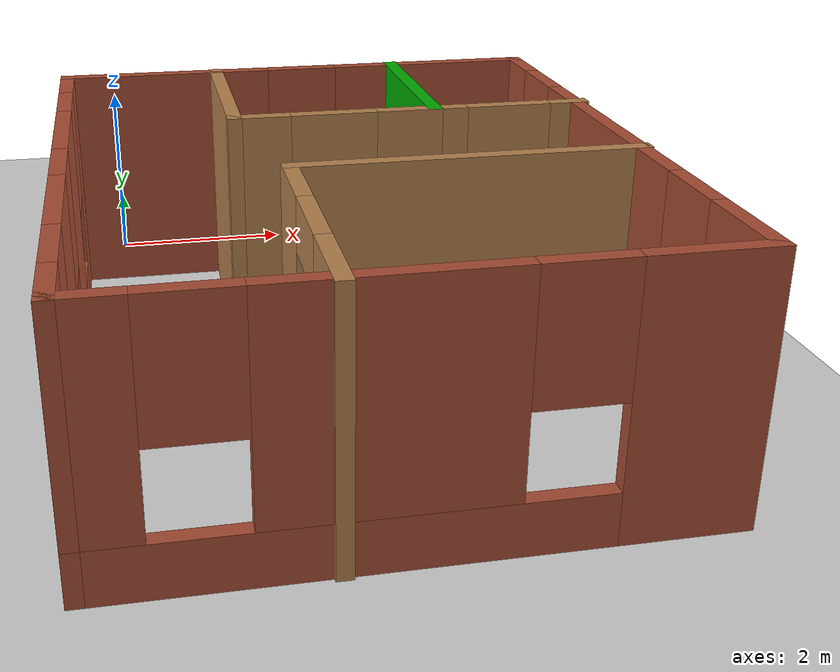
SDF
<sdf version="1.6">
 <world name="default">
  <light name="sun" type="directional">
   <pose>0 0 10 0 -0 0</pose>
   <diffuse>0.8 0.8 0.8 1</diffuse>
   <specular>0.2 0.2 0.2 1</specular>
   <attenuation>
    <range>1000</range>
    <constant>0.9</constant>
    <linear>0.01</linear>
    <quadratic>0.001</quadratic>
   </attenuation>
   <direction>-0.5 0.1 -0.9</direction>
  </light>
  <model name="ground_plane">
   <static>1</static>
   <link name="link">
    <collision name="collision">
     <geometry><plane><normal>0 0 1</normal><size>100 100</size></plane></geometry>
     <surface><friction><ode><mu>100</mu><mu2>50</mu2></ode></friction></surface>
    </collision>
    <visual name="visual">
     <cast_shadows>0</cast_shadows>
     <geometry><plane><normal>0 0 1</normal><size>100 100</size></plane></geometry>
     <material>
      <script><uri>file://media/materials/scripts/gazebo.material</uri><name>Gazebo/Grey</name></script>
     </material>
    </visual>
   </link>
  </model>
  <gravity>0 0 -9.8</gravity>
  <magnetic_field>6e-06 2.3e-05 -4.2e-05</magnetic_field>
  <atmosphere type="adiabatic"/>
  <physics name="default_physics" default="0" type="ode">
   <max_step_size>0.001</max_step_size>
   <real_time_factor>1</real_time_factor>
   <real_time_update_rate>1000</real_time_update_rate>
  </physics>
  <scene><ambient>0.4 0.4 0.4 1</ambient><background>0.7 0.7 0.7 1</background><shadows>1</shadows></scene>
  <spherical_coordinates>
   <surface_model>EARTH_WGS84</surface_model>
   <latitude_deg>0</latitude_deg>
   <longitude_deg>0</longitude_deg>
   <elevation>0</elevation>
   <heading_deg>0</heading_deg>
  </spherical_coordinates>
  <model name="NewRobotWorld">
   <pose>2.19526 -4.22835 0 0 -0 0</pose>
   <link name="Wall_10">
    <collision name="Wall_10_Collision">
     <geometry><box><size>3.5 0.15 2.5</size></box></geometry>
     <pose>0 0 1.25 0 -0 0</pose>
    </collision>
    <visual name="Wall_10_Visual">
     <pose>0 0 1.25 0 -0 0</pose>
     <geometry><box><size>3.5 0.15 2.5</size></box></geometry>
     <material>
      <script><uri>file://media/materials/scripts/gazebo.material</uri><name>Gazebo/Wood</name></script>
      <ambient>1 1 1 1</ambient>
     </material>
     <meta><layer>0</layer></meta>
    </visual>
    <pose>1.0011 -0.604896 0 0 -0 3.14159</pose>
   </link>
   <link name="Wall_11">
    <pose>-0.673905 -1.9049 0 0 0 -1.5708</pose>
    <visual name="Wall_11_Visual_0">
     <pose>-0.912326 0 1.25 0 -0 0</pose>
     <geometry><box><size>0.925348 0.15 2.5</size></box></geometry>
     <material>
      <script><uri>file://media/materials/scripts/gazebo.material</uri><name>Gazebo/Wood</name></script>
      <ambient>1 1 1 1</ambient>
     </material>
     <meta><layer>0</layer></meta>
    </visual>
    <collision name="Wall_11_Collision_0">
     <geometry><box><size>0.925348 0.15 2.5</size></box></geometry>
     <pose>-0.912326 0 1.25 0 -0 0</pose>
    </collision>
    <visual name="Wall_11_Visual_1">
     <pose>0.912674 0 1.25 0 -0 0</pose>
     <geometry><box><size>0.924652 0.15 2.5</size></box></geometry>
     <material>
      <script><uri>file://media/materials/scripts/gazebo.material</uri><name>Gazebo/Wood</name></script>
      <ambient>1 1 1 1</ambient>
     </material>
     <meta><layer>0</layer></meta>
    </visual>
    <collision name="Wall_11_Collision_1">
     <geometry><box><size>0.924652 0.15 2.5</size></box></geometry>
     <pose>0.912674 0 1.25 0 -0 0</pose>
    </collision>
    <visual name="Wall_11_Visual_2">
     <pose>0.000348 0 2.25 0 -0 0</pose>
     <geometry><box><size>0.9 0.15 0.5</size></box></geometry>
     <material>
      <script><uri>file://media/materials/scripts/gazebo.material</uri><name>Gazebo/Wood</name></script>
      <ambient>1 1 1 1</ambient>
     </material>
     <meta><layer>0</layer></meta>
    </visual>
    <collision name="Wall_11_Collision_2">
     <geometry><box><size>0.9 0.15 0.5</size></box></geometry>
     <pose>0.000348 0 2.25 0 -0 0</pose>
    </collision>
   </link>
   <link name="Wall_18">
    <collision name="Wall_18_Collision">
     <geometry><box><size>2.25 0.15 2.5</size></box></geometry>
     <pose>0 0 1.25 0 -0 0</pose>
    </collision>
    <visual name="Wall_18_Visual">
     <pose>0 0 1.25 0 -0 0</pose>
     <geometry><box><size>2.25 0.15 2.5</size></box></geometry>
     <material>
      <script><uri>file://media/materials/scripts/gazebo.material</uri><name>Gazebo/Grey</name></script>
      <ambient>0 0.666667 0 1</ambient>
     </material>
     <meta><layer>0</layer></meta>
    </visual>
    <pose>1.10199 2.1549 0 0 0 -1.5708</pose>
   </link>
   <link name="Wall_19">
    <pose>1.90199 1.1049 0 0 -0 0</pose>
    <visual name="Wall_19_Visual_0">
     <pose>-0.66327 0 1.25 0 -0 0</pose>
     <geometry><box><size>0.423459 0.15 2.5</size></box></geometry>
     <material>
      <script><uri>file://media/materials/scripts/gazebo.material</uri><name>Gazebo/Wood</name></script>
      <ambient>1 1 1 1</ambient>
     </material>
     <meta><layer>0</layer></meta>
    </visual>
    <collision name="Wall_19_Collision_0">
     <geometry><box><size>0.423459 0.15 2.5</size></box></geometry>
     <pose>-0.66327 0 1.25 0 -0 0</pose>
    </collision>
    <visual name="Wall_19_Visual_1">
     <pose>0.66173 0 1.25 0 -0 0</pose>
     <geometry><box><size>0.426541 0.15 2.5</size></box></geometry>
     <material>
      <script><uri>file://media/materials/scripts/gazebo.material</uri><name>Gazebo/Wood</name></script>
      <ambient>1 1 1 1</ambient>
     </material>
     <meta><layer>0</layer></meta>
    </visual>
    <collision name="Wall_19_Collision_1">
     <geometry><box><size>0.426541 0.15 2.5</size></box></geometry>
     <pose>0.66173 0 1.25 0 -0 0</pose>
    </collision>
    <visual name="Wall_19_Visual_2">
     <pose>-0.001541 0 2.25 0 -0 0</pose>
     <geometry><box><size>0.9 0.15 0.5</size></box></geometry>
     <material>
      <script><uri>file://media/materials/scripts/gazebo.material</uri><name>Gazebo/Wood</name></script>
      <ambient>1 1 1 1</ambient>
     </material>
     <meta><layer>0</layer></meta>
    </visual>
    <collision name="Wall_19_Collision_2">
     <geometry><box><size>0.9 0.15 0.5</size></box></geometry>
     <pose>-0.001541 0 2.25 0 -0 0</pose>
    </collision>
   </link>
   <link name="Wall_22">
    <pose>-2.70199 0.007083 0 0 0 -1.5708</pose>
    <visual name="Wall_22_Visual_0">
     <pose>-2.85358 0 1.25 0 -0 0</pose>
     <geometry><box><size>0.792843 0.15 2.5</size></box></geometry>
     <material>
      <script><uri>file://media/materials/scripts/gazebo.material</uri><name>Gazebo/Bricks</name></script>
      <ambient>1 1 1 1</ambient>
     </material>
     <meta><layer>0</layer></meta>
    </visual>
    <collision name="Wall_22_Collision_0">
     <geometry><box><size>0.792843 0.15 2.5</size></box></geometry>
     <pose>-2.85358 0 1.25 0 -0 0</pose>
    </collision>
    <visual name="Wall_22_Visual_1">
     <pose>0.396422 0 0.25 0 -0 0</pose>
     <geometry><box><size>5.70716 0.15 0.5</size></box></geometry>
     <material>
      <script><uri>file://media/materials/scripts/gazebo.material</uri><name>Gazebo/Bricks</name></script>
      <ambient>1 1 1 1</ambient>
     </material>
     <meta><layer>0</layer></meta>
    </visual>
    <collision name="Wall_22_Collision_1">
     <geometry><box><size>5.70716 0.15 0.5</size></box></geometry>
     <pose>0.396422 0 0.25 0 -0 0</pose>
    </collision>
    <visual name="Wall_22_Visual_2">
     <pose>-0.973533 0 1.5 0 -0 0</pose>
     <geometry><box><size>1.36725 0.15 2</size></box></geometry>
     <material>
      <script><uri>file://media/materials/scripts/gazebo.material</uri><name>Gazebo/Bricks</name></script>
      <ambient>1 1 1 1</ambient>
     </material>
     <meta><layer>0</layer></meta>
    </visual>
    <collision name="Wall_22_Collision_2">
     <geometry><box><size>1.36725 0.15 2</size></box></geometry>
     <pose>-0.973533 0 1.5 0 -0 0</pose>
    </collision>
    <visual name="Wall_22_Visual_3">
     <pose>1.13668 0 1.5 0 -0 0</pose>
     <geometry><box><size>1.25318 0.15 2</size></box></geometry>
     <material>
      <script><uri>file://media/materials/scripts/gazebo.material</uri><name>Gazebo/Bricks</name></script>
      <ambient>1 1 1 1</ambient>
     </material>
     <meta><layer>0</layer></meta>
    </visual>
    <collision name="Wall_22_Collision_3">
     <geometry><box><size>1.25318 0.15 2</size></box></geometry>
     <pose>1.13668 0 1.5 0 -0 0</pose>
    </collision>
    <visual name="Wall_22_Visual_4">
     <pose>2.90664 0 1.5 0 -0 0</pose>
     <geometry><box><size>0.686729 0.15 2</size></box></geometry>
     <material>
      <script><uri>file://media/materials/scripts/gazebo.material</uri><name>Gazebo/Bricks</name></script>
      <ambient>1 1 1 1</ambient>
     </material>
     <meta><layer>0</layer></meta>
    </visual>
    <collision name="Wall_22_Collision_4">
     <geometry><box><size>0.686729 0.15 2</size></box></geometry>
     <pose>2.90664 0 1.5 0 -0 0</pose>
    </collision>
    <visual name="Wall_22_Visual_5">
     <pose>-2.05716 0 1.9 0 -0 0</pose>
     <geometry><box><size>0.8 0.15 1.2</size></box></geometry>
     <material>
      <script><uri>file://media/materials/scripts/gazebo.material</uri><name>Gazebo/Bricks</name></script>
      <ambient>1 1 1 1</ambient>
     </material>
     <meta><layer>0</layer></meta>
    </visual>
    <collision name="Wall_22_Collision_5">
     <geometry><box><size>0.8 0.15 1.2</size></box></geometry>
     <pose>-2.05716 0 1.9 0 -0 0</pose>
    </collision>
    <visual name="Wall_22_Visual_6">
     <pose>0.11009 0 1.9 0 -0 0</pose>
     <geometry><box><size>0.8 0.15 1.2</size></box></geometry>
     <material>
      <script><uri>file://media/materials/scripts/gazebo.material</uri><name>Gazebo/Bricks</name></script>
      <ambient>1 1 1 1</ambient>
     </material>
     <meta><layer>0</layer></meta>
    </visual>
    <collision name="Wall_22_Collision_6">
     <geometry><box><size>0.8 0.15 1.2</size></box></geometry>
     <pose>0.11009 0 1.9 0 -0 0</pose>
    </collision>
    <visual name="Wall_22_Visual_7">
     <pose>2.16327 0 1.9 0 -0 0</pose>
     <geometry><box><size>0.8 0.15 1.2</size></box></geometry>
     <material>
      <script><uri>file://media/materials/scripts/gazebo.material</uri><name>Gazebo/Bricks</name></script>
      <ambient>1 1 1 1</ambient>
     </material>
     <meta><layer>0</layer></meta>
    </visual>
    <collision name="Wall_22_Collision_7">
     <geometry><box><size>0.8 0.15 1.2</size></box></geometry>
     <pose>2.16327 0 1.9 0 -0 0</pose>
    </collision>
   </link>
   <link name="Wall_24">
    <pose>0.051989 1.1049 0 0 -0 3.14159</pose>
    <visual name="Wall_24_Visual_0">
     <pose>-0.776392 0 1.25 0 -0 0</pose>
     <geometry><box><size>0.697217 0.15 2.5</size></box></geometry>
     <material>
      <script><uri>file://media/materials/scripts/gazebo.material</uri><name>Gazebo/Wood</name></script>
      <ambient>1 1 1 1</ambient>
     </material>
     <meta><layer>0</layer></meta>
    </visual>
    <collision name="Wall_24_Collision_0">
     <geometry><box><size>0.697217 0.15 2.5</size></box></geometry>
     <pose>-0.776392 0 1.25 0 -0 0</pose>
    </collision>
    <visual name="Wall_24_Visual_1">
     <pose>0.798608 0 1.25 0 -0 0</pose>
     <geometry><box><size>0.652783 0.15 2.5</size></box></geometry>
     <material>
      <script><uri>file://media/materials/scripts/gazebo.material</uri><name>Gazebo/Wood</name></script>
      <ambient>1 1 1 1</ambient>
     </material>
     <meta><layer>0</layer></meta>
    </visual>
    <collision name="Wall_24_Collision_1">
     <geometry><box><size>0.652783 0.15 2.5</size></box></geometry>
     <pose>0.798608 0 1.25 0 -0 0</pose>
    </collision>
    <visual name="Wall_24_Visual_2">
     <pose>0.022217 0 2.25 0 -0 0</pose>
     <geometry><box><size>0.9 0.15 0.5</size></box></geometry>
     <material>
      <script><uri>file://media/materials/scripts/gazebo.material</uri><name>Gazebo/Wood</name></script>
      <ambient>1 1 1 1</ambient>
     </material>
     <meta><layer>0</layer></meta>
    </visual>
    <collision name="Wall_24_Collision_2">
     <geometry><box><size>0.9 0.15 0.5</size></box></geometry>
     <pose>0.022217 0 2.25 0 -0 0</pose>
    </collision>
   </link>
   <link name="Wall_26">
    <collision name="Wall_26_Collision">
     <geometry><box><size>2.25 0.15 2.5</size></box></geometry>
     <pose>0 0 1.25 0 -0 0</pose>
    </collision>
    <visual name="Wall_26_Visual">
     <pose>0 0 1.25 0 -0 0</pose>
     <geometry><box><size>2.25 0.15 2.5</size></box></geometry>
     <material>
      <script><uri>file://media/materials/scripts/gazebo.material</uri><name>Gazebo/Wood</name></script>
      <ambient>1 1 1 1</ambient>
     </material>
     <meta><layer>0</layer></meta>
    </visual>
    <pose>-0.998011 2.1549 0 0 -0 1.5708</pose>
   </link>
   <link name="Wall_5">
    <pose>-0.026989 3.18208 0 0 -0 0</pose>
    <visual name="Wall_5_Visual_0">
     <pose>-1.55803 0 1.25 0 -0 0</pose>
     <geometry><box><size>2.38395 0.15 2.5</size></box></geometry>
     <material>
      <script><uri>file://media/materials/scripts/gazebo.material</uri><name>Gazebo/Bricks</name></script>
      <ambient>1 1 1 1</ambient>
     </material>
     <meta><layer>0</layer></meta>
    </visual>
    <collision name="Wall_5_Collision_0">
     <geometry><box><size>2.38395 0.15 2.5</size></box></geometry>
     <pose>-1.55803 0 1.25 0 -0 0</pose>
    </collision>
    <visual name="Wall_5_Visual_1">
     <pose>1.19197 0 0.25 0 -0 0</pose>
     <geometry><box><size>3.11605 0.15 0.5</size></box></geometry>
     <material>
      <script><uri>file://media/materials/scripts/gazebo.material</uri><name>Gazebo/Bricks</name></script>
      <ambient>1 1 1 1</ambient>
     </material>
     <meta><layer>0</layer></meta>
    </visual>
    <collision name="Wall_5_Collision_1">
     <geometry><box><size>3.11605 0.15 0.5</size></box></geometry>
     <pose>1.19197 0 0.25 0 -0 0</pose>
    </collision>
    <visual name="Wall_5_Visual_2">
     <pose>1.59197 0 1.5 0 -0 0</pose>
     <geometry><box><size>2.31605 0.15 2</size></box></geometry>
     <material>
      <script><uri>file://media/materials/scripts/gazebo.material</uri><name>Gazebo/Bricks</name></script>
      <ambient>1 1 1 1</ambient>
     </material>
     <meta><layer>0</layer></meta>
    </visual>
    <collision name="Wall_5_Collision_2">
     <geometry><box><size>2.31605 0.15 2</size></box></geometry>
     <pose>1.59197 0 1.5 0 -0 0</pose>
    </collision>
    <visual name="Wall_5_Visual_3">
     <pose>0.033947 0 1.9 0 -0 0</pose>
     <geometry><box><size>0.8 0.15 1.2</size></box></geometry>
     <material>
      <script><uri>file://media/materials/scripts/gazebo.material</uri><name>Gazebo/Bricks</name></script>
      <ambient>1 1 1 1</ambient>
     </material>
     <meta><layer>0</layer></meta>
    </visual>
    <collision name="Wall_5_Collision_3">
     <geometry><box><size>0.8 0.15 1.2</size></box></geometry>
     <pose>0.033947 0 1.9 0 -0 0</pose>
    </collision>
   </link>
   <link name="Wall_6">
    <pose>2.64801 0.007083 0 0 0 -1.5708</pose>
    <visual name="Wall_6_Visual_0">
     <pose>-2.8878 0 1.25 0 -0 0</pose>
     <geometry><box><size>0.724404 0.15 2.5</size></box></geometry>
     <material>
      <script><uri>file://media/materials/scripts/gazebo.material</uri><name>Gazebo/Bricks</name></script>
      <ambient>1 1 1 1</ambient>
     </material>
     <meta><layer>0</layer></meta>
    </visual>
    <collision name="Wall_6_Collision_0">
     <geometry><box><size>0.724404 0.15 2.5</size></box></geometry>
     <pose>-2.8878 0 1.25 0 -0 0</pose>
    </collision>
    <visual name="Wall_6_Visual_1">
     <pose>0.362202 0 0.25 0 -0 0</pose>
     <geometry><box><size>5.7756 0.15 0.5</size></box></geometry>
     <material>
      <script><uri>file://media/materials/scripts/gazebo.material</uri><name>Gazebo/Bricks</name></script>
      <ambient>1 1 1 1</ambient>
     </material>
     <meta><layer>0</layer></meta>
    </visual>
    <collision name="Wall_6_Collision_1">
     <geometry><box><size>5.7756 0.15 0.5</size></box></geometry>
     <pose>0.362202 0 0.25 0 -0 0</pose>
    </collision>
    <visual name="Wall_6_Visual_2">
     <pose>-0.175074 0 1.5 0 -0 0</pose>
     <geometry><box><size>3.10104 0.15 2</size></box></geometry>
     <material>
      <script><uri>file://media/materials/scripts/gazebo.material</uri><name>Gazebo/Bricks</name></script>
      <ambient>1 1 1 1</ambient>
     </material>
     <meta><layer>0</layer></meta>
    </visual>
    <collision name="Wall_6_Collision_2">
     <geometry><box><size>3.10104 0.15 2</size></box></geometry>
     <pose>-0.175074 0 1.5 0 -0 0</pose>
    </collision>
    <visual name="Wall_6_Visual_3">
     <pose>2.71272 0 1.5 0 -0 0</pose>
     <geometry><box><size>1.07455 0.15 2</size></box></geometry>
     <material>
      <script><uri>file://media/materials/scripts/gazebo.material</uri><name>Gazebo/Bricks</name></script>
      <ambient>1 1 1 1</ambient>
     </material>
     <meta><layer>0</layer></meta>
    </visual>
    <collision name="Wall_6_Collision_3">
     <geometry><box><size>1.07455 0.15 2</size></box></geometry>
     <pose>2.71272 0 1.5 0 -0 0</pose>
    </collision>
    <visual name="Wall_6_Visual_4">
     <pose>-2.1256 0 1.9 0 -0 0</pose>
     <geometry><box><size>0.8 0.15 1.2</size></box></geometry>
     <material>
      <script><uri>file://media/materials/scripts/gazebo.material</uri><name>Gazebo/Bricks</name></script>
      <ambient>1 1 1 1</ambient>
     </material>
     <meta><layer>0</layer></meta>
    </visual>
    <collision name="Wall_6_Collision_4">
     <geometry><box><size>0.8 0.15 1.2</size></box></geometry>
     <pose>-2.1256 0 1.9 0 -0 0</pose>
    </collision>
    <visual name="Wall_6_Visual_5">
     <pose>1.77545 0 1.9 0 -0 0</pose>
     <geometry><box><size>0.8 0.15 1.2</size></box></geometry>
     <material>
      <script><uri>file://media/materials/scripts/gazebo.material</uri><name>Gazebo/Bricks</name></script>
      <ambient>1 1 1 1</ambient>
     </material>
     <meta><layer>0</layer></meta>
    </visual>
    <collision name="Wall_6_Collision_5">
     <geometry><box><size>0.8 0.15 1.2</size></box></geometry>
     <pose>1.77545 0 1.9 0 -0 0</pose>
    </collision>
   </link>
   <link name="Wall_7">
    <pose>-0.026989 -3.16792 0 0 -0 3.14159</pose>
    <visual name="Wall_7_Visual_0">
     <pose>-2.1623 0 1.25 0 -0 0</pose>
     <geometry><box><size>1.1754 0.15 2.5</size></box></geometry>
     <material>
      <script><uri>file://media/materials/scripts/gazebo.material</uri><name>Gazebo/Bricks</name></script>
      <ambient>1 1 1 1</ambient>
     </material>
     <meta><layer>0</layer></meta>
    </visual>
    <collision name="Wall_7_Collision_0">
     <geometry><box><size>1.1754 0.15 2.5</size></box></geometry>
     <pose>-2.1623 0 1.25 0 -0 0</pose>
    </collision>
    <visual name="Wall_7_Visual_1">
     <pose>0.587698 0 0.25 0 -0 0</pose>
     <geometry><box><size>4.3246 0.15 0.5</size></box></geometry>
     <material>
      <script><uri>file://media/materials/scripts/gazebo.material</uri><name>Gazebo/Bricks</name></script>
      <ambient>1 1 1 1</ambient>
     </material>
     <meta><layer>0</layer></meta>
    </visual>
    <collision name="Wall_7_Collision_1">
     <geometry><box><size>4.3246 0.15 0.5</size></box></geometry>
     <pose>0.587698 0 0.25 0 -0 0</pose>
    </collision>
    <visual name="Wall_7_Visual_2">
     <pose>0.27403 0 1.5 0 -0 0</pose>
     <geometry><box><size>2.09727 0.15 2</size></box></geometry>
     <material>
      <script><uri>file://media/materials/scripts/gazebo.material</uri><name>Gazebo/Bricks</name></script>
      <ambient>1 1 1 1</ambient>
     </material>
     <meta><layer>0</layer></meta>
    </visual>
    <collision name="Wall_7_Collision_2">
     <geometry><box><size>2.09727 0.15 2</size></box></geometry>
     <pose>0.27403 0 1.5 0 -0 0</pose>
    </collision>
    <visual name="Wall_7_Visual_3">
     <pose>2.43633 0 1.5 0 -0 0</pose>
     <geometry><box><size>0.627337 0.15 2</size></box></geometry>
     <material>
      <script><uri>file://media/materials/scripts/gazebo.material</uri><name>Gazebo/Bricks</name></script>
      <ambient>1 1 1 1</ambient>
     </material>
     <meta><layer>0</layer></meta>
    </visual>
    <collision name="Wall_7_Collision_3">
     <geometry><box><size>0.627337 0.15 2</size></box></geometry>
     <pose>2.43633 0 1.5 0 -0 0</pose>
    </collision>
    <visual name="Wall_7_Visual_4">
     <pose>-1.1746 0 1.9 0 -0 0</pose>
     <geometry><box><size>0.8 0.15 1.2</size></box></geometry>
     <material>
      <script><uri>file://media/materials/scripts/gazebo.material</uri><name>Gazebo/Bricks</name></script>
      <ambient>1 1 1 1</ambient>
     </material>
     <meta><layer>0</layer></meta>
    </visual>
    <collision name="Wall_7_Collision_4">
     <geometry><box><size>0.8 0.15 1.2</size></box></geometry>
     <pose>-1.1746 0 1.9 0 -0 0</pose>
    </collision>
    <visual name="Wall_7_Visual_5">
     <pose>1.72266 0 1.9 0 -0 0</pose>
     <geometry><box><size>0.8 0.15 1.2</size></box></geometry>
     <material>
      <script><uri>file://media/materials/scripts/gazebo.material</uri><name>Gazebo/Bricks</name></script>
      <ambient>1 1 1 1</ambient>
     </material>
     <meta><layer>0</layer></meta>
    </visual>
    <collision name="Wall_7_Collision_5">
     <geometry><box><size>0.8 0.15 1.2</size></box></geometry>
     <pose>1.72266 0 1.9 0 -0 0</pose>
    </collision>
   </link>
   <static>1</static>
  </model>
 </world>
</sdf>
